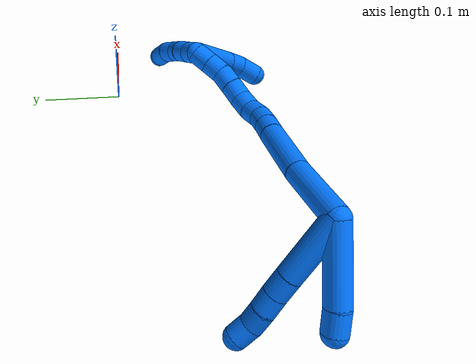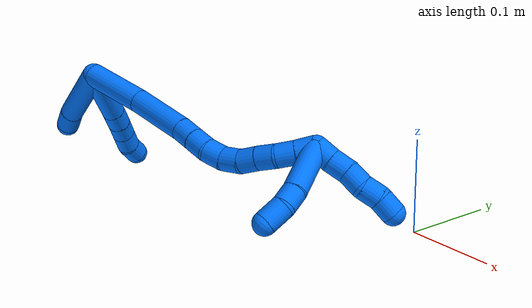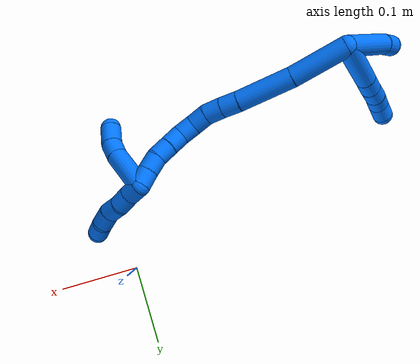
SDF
<sdf version="1.7">
 <world name="default">
  <model name="14">
   <static>0</static>
   <link name="14">
    <collision name="collision-cylinder-e_1_2_8">
     <pose>-0.025557 0.01854 -0.012204 -2.15297 -0.85566 1.40445</pose>
     <geometry><cylinder><radius>0.0125</radius><length>0.067701</length></cylinder></geometry>
     <surface>
      <friction><ode><mu>1.16</mu><mu2>1.16</mu2><slip1>0</slip1><slip2>0</slip2></ode></friction>
      <contact><ode><kp>1e+06</kp><kd>1</kd><max_vel>0</max_vel><min_depth>0.001</min_depth></ode></contact>
     </surface>
    </collision>
    <visual name="visual-cylinder-e_1_2_8">
     <pose>-0.025557 0.01854 -0.012204 -2.15297 -0.85566 1.40445</pose>
     <geometry><cylinder><radius>0.0125</radius><length>0.067701</length></cylinder></geometry>
     <material><ambient>0 0.462745 1 1</ambient></material>
    </visual>
    <collision name="collision-cylinder-e_2_8_9">
     <pose>-0.05945 0.042703 -0.02854 -2.20441 -0.873911 1.49044</pose>
     <geometry><cylinder><radius>0.0125</radius><length>0.021741</length></cylinder></geometry>
     <surface>
      <friction><ode><mu>1.16</mu><mu2>1.16</mu2><slip1>0</slip1><slip2>0</slip2></ode></friction>
      <contact><ode><kp>1e+06</kp><kd>1</kd><max_vel>0</max_vel><min_depth>0.001</min_depth></ode></contact>
     </surface>
    </collision>
    <visual name="visual-cylinder-e_2_8_9">
     <pose>-0.05945 0.042703 -0.02854 -2.20441 -0.873911 1.49044</pose>
     <geometry><cylinder><radius>0.0125</radius><length>0.021741</length></cylinder></geometry>
     <material><ambient>0 0.462745 1 1</ambient></material>
    </visual>
    <collision name="collision-cylinder-e_3_9_10">
     <pose>-0.075734 0.053463 -0.036203 -2.17322 -0.905601 1.49295</pose>
     <geometry><cylinder><radius>0.0125</radius><length>0.020203</length></cylinder></geometry>
     <surface>
      <friction><ode><mu>1.16</mu><mu2>1.16</mu2><slip1>0</slip1><slip2>0</slip2></ode></friction>
      <contact><ode><kp>1e+06</kp><kd>1</kd><max_vel>0</max_vel><min_depth>0.001</min_depth></ode></contact>
     </surface>
    </collision>
    <visual name="visual-cylinder-e_3_9_10">
     <pose>-0.075734 0.053463 -0.036203 -2.17322 -0.905601 1.49295</pose>
     <geometry><cylinder><radius>0.0125</radius><length>0.020203</length></cylinder></geometry>
     <material><ambient>0 0.462745 1 1</ambient></material>
    </visual>
    <collision name="collision-cylinder-e_4_10_11">
     <pose>-0.091551 0.063178 -0.044156 -2.33867 -0.890792 1.68791</pose>
     <geometry><cylinder><radius>0.0125</radius><length>0.020239</length></cylinder></geometry>
     <surface>
      <friction><ode><mu>1.16</mu><mu2>1.16</mu2><slip1>0</slip1><slip2>0</slip2></ode></friction>
      <contact><ode><kp>1e+06</kp><kd>1</kd><max_vel>0</max_vel><min_depth>0.001</min_depth></ode></contact>
     </surface>
    </collision>
    <visual name="visual-cylinder-e_4_10_11">
     <pose>-0.091551 0.063178 -0.044156 -2.33867 -0.890792 1.68791</pose>
     <geometry><cylinder><radius>0.0125</radius><length>0.020239</length></cylinder></geometry>
     <material><ambient>0 0.462745 1 1</ambient></material>
    </visual>
    <collision name="collision-cylinder-e_5_11_6">
     <pose>-0.105608 0.074569 -0.05263 -2.10746 -0.662759 1.08822</pose>
     <geometry><cylinder><radius>0.0125</radius><length>0.020116</length></cylinder></geometry>
     <surface>
      <friction><ode><mu>1.16</mu><mu2>1.16</mu2><slip1>0</slip1><slip2>0</slip2></ode></friction>
      <contact><ode><kp>1e+06</kp><kd>1</kd><max_vel>0</max_vel><min_depth>0.001</min_depth></ode></contact>
     </surface>
    </collision>
    <visual name="visual-cylinder-e_5_11_6">
     <pose>-0.105608 0.074569 -0.05263 -2.10746 -0.662759 1.08822</pose>
     <geometry><cylinder><radius>0.0125</radius><length>0.020116</length></cylinder></geometry>
     <material><ambient>0 0.462745 1 1</ambient></material>
    </visual>
    <collision name="collision-cylinder-e_1_2_12">
     <pose>-0.037434 0.007468 0.004735 -1.00575 -1.33885 0.82105</pose>
     <geometry><cylinder><radius>0.0125</radius><length>0.076929</length></cylinder></geometry>
     <surface>
      <friction><ode><mu>1.16</mu><mu2>1.16</mu2><slip1>0</slip1><slip2>0</slip2></ode></friction>
      <contact><ode><kp>1e+06</kp><kd>1</kd><max_vel>0</max_vel><min_depth>0.001</min_depth></ode></contact>
     </surface>
    </collision>
    <visual name="visual-cylinder-e_1_2_12">
     <pose>-0.037434 0.007468 0.004735 -1.00575 -1.33885 0.82105</pose>
     <geometry><cylinder><radius>0.0125</radius><length>0.076929</length></cylinder></geometry>
     <material><ambient>0 0.462745 1 1</ambient></material>
    </visual>
    <collision name="collision-cylinder-e_2_12_5">
     <pose>-0.086105 0.017541 0.009278 -1.64412 -1.34235 1.41438</pose>
     <geometry><cylinder><radius>0.0125</radius><length>0.023071</length></cylinder></geometry>
     <surface>
      <friction><ode><mu>1.16</mu><mu2>1.16</mu2><slip1>0</slip1><slip2>0</slip2></ode></friction>
      <contact><ode><kp>1e+06</kp><kd>1</kd><max_vel>0</max_vel><min_depth>0.001</min_depth></ode></contact>
     </surface>
    </collision>
    <visual name="visual-cylinder-e_2_12_5">
     <pose>-0.086105 0.017541 0.009278 -1.64412 -1.34235 1.41438</pose>
     <geometry><cylinder><radius>0.0125</radius><length>0.023071</length></cylinder></geometry>
     <material><ambient>0 0.462745 1 1</ambient></material>
    </visual>
    <collision name="collision-cylinder-e_1_2_13">
     <pose>0.012399 -0.004952 -0.032191 2.98897 0.363747 2.35358</pose>
     <geometry><cylinder><radius>0.0125</radius><length>0.0697</length></cylinder></geometry>
     <surface>
      <friction><ode><mu>1.16</mu><mu2>1.16</mu2><slip1>0</slip1><slip2>0</slip2></ode></friction>
      <contact><ode><kp>1e+06</kp><kd>1</kd><max_vel>0</max_vel><min_depth>0.001</min_depth></ode></contact>
     </surface>
    </collision>
    <visual name="visual-cylinder-e_1_2_13">
     <pose>0.012399 -0.004952 -0.032191 2.98897 0.363747 2.35358</pose>
     <geometry><cylinder><radius>0.0125</radius><length>0.0697</length></cylinder></geometry>
     <material><ambient>0 0.462745 1 1</ambient></material>
    </visual>
    <collision name="collision-cylinder-e_2_13_14">
     <pose>0.036749 -0.017654 -0.095256 2.89562 0.359181 1.94604</pose>
     <geometry><cylinder><radius>0.0125</radius><length>0.068001</length></cylinder></geometry>
     <surface>
      <friction><ode><mu>1.16</mu><mu2>1.16</mu2><slip1>0</slip1><slip2>0</slip2></ode></friction>
      <contact><ode><kp>1e+06</kp><kd>1</kd><max_vel>0</max_vel><min_depth>0.001</min_depth></ode></contact>
     </surface>
    </collision>
    <visual name="visual-cylinder-e_2_13_14">
     <pose>0.036749 -0.017654 -0.095256 2.89562 0.359181 1.94604</pose>
     <geometry><cylinder><radius>0.0125</radius><length>0.068001</length></cylinder></geometry>
     <material><ambient>0 0.462745 1 1</ambient></material>
    </visual>
    <collision name="collision-cylinder-e_3_14_15">
     <pose>0.051844 -0.02849 -0.135747 2.8312 0.301641 1.54174</pose>
     <geometry><cylinder><radius>0.0125</radius><length>0.021158</length></cylinder></geometry>
     <surface>
      <friction><ode><mu>1.16</mu><mu2>1.16</mu2><slip1>0</slip1><slip2>0</slip2></ode></friction>
      <contact><ode><kp>1e+06</kp><kd>1</kd><max_vel>0</max_vel><min_depth>0.001</min_depth></ode></contact>
     </surface>
    </collision>
    <visual name="visual-cylinder-e_3_14_15">
     <pose>0.051844 -0.02849 -0.135747 2.8312 0.301641 1.54174</pose>
     <geometry><cylinder><radius>0.0125</radius><length>0.021158</length></cylinder></geometry>
     <material><ambient>0 0.462745 1 1</ambient></material>
    </visual>
    <collision name="collision-cylinder-e_4_15_16">
     <pose>0.057857 -0.034204 -0.155089 2.87757 0.277641 1.62169</pose>
     <geometry><cylinder><radius>0.0125</radius><length>0.020946</length></cylinder></geometry>
     <surface>
      <friction><ode><mu>1.16</mu><mu2>1.16</mu2><slip1>0</slip1><slip2>0</slip2></ode></friction>
      <contact><ode><kp>1e+06</kp><kd>1</kd><max_vel>0</max_vel><min_depth>0.001</min_depth></ode></contact>
     </surface>
    </collision>
    <visual name="visual-cylinder-e_4_15_16">
     <pose>0.057857 -0.034204 -0.155089 2.87757 0.277641 1.62169</pose>
     <geometry><cylinder><radius>0.0125</radius><length>0.020946</length></cylinder></geometry>
     <material><ambient>0 0.462745 1 1</ambient></material>
    </visual>
    <collision name="collision-cylinder-e_5_16_17">
     <pose>0.063826 -0.036746 -0.174419 -3.13262 0.311992 -3.08458</pose>
     <geometry><cylinder><radius>0.0125</radius><length>0.020189</length></cylinder></geometry>
     <surface>
      <friction><ode><mu>1.16</mu><mu2>1.16</mu2><slip1>0</slip1><slip2>0</slip2></ode></friction>
      <contact><ode><kp>1e+06</kp><kd>1</kd><max_vel>0</max_vel><min_depth>0.001</min_depth></ode></contact>
     </surface>
    </collision>
    <visual name="visual-cylinder-e_5_16_17">
     <pose>0.063826 -0.036746 -0.174419 -3.13262 0.311992 -3.08458</pose>
     <geometry><cylinder><radius>0.0125</radius><length>0.020189</length></cylinder></geometry>
     <material><ambient>0 0.462745 1 1</ambient></material>
    </visual>
    <collision name="collision-cylinder-e_6_17_18">
     <pose>0.072736 -0.036245 -0.192154 -3.09056 0.62001 -2.98258</pose>
     <geometry><cylinder><radius>0.0125</radius><length>0.020001</length></cylinder></geometry>
     <surface>
      <friction><ode><mu>1.16</mu><mu2>1.16</mu2><slip1>0</slip1><slip2>0</slip2></ode></friction>
      <contact><ode><kp>1e+06</kp><kd>1</kd><max_vel>0</max_vel><min_depth>0.001</min_depth></ode></contact>
     </surface>
    </collision>
    <visual name="visual-cylinder-e_6_17_18">
     <pose>0.072736 -0.036245 -0.192154 -3.09056 0.62001 -2.98258</pose>
     <geometry><cylinder><radius>0.0125</radius><length>0.020001</length></cylinder></geometry>
     <material><ambient>0 0.462745 1 1</ambient></material>
    </visual>
    <collision name="collision-cylinder-e_7_18_19">
     <pose>0.086262 -0.034103 -0.206408 -2.86689 0.881132 -2.57123</pose>
     <geometry><cylinder><radius>0.0125</radius><length>0.020003</length></cylinder></geometry>
     <surface>
      <friction><ode><mu>1.16</mu><mu2>1.16</mu2><slip1>0</slip1><slip2>0</slip2></ode></friction>
      <contact><ode><kp>1e+06</kp><kd>1</kd><max_vel>0</max_vel><min_depth>0.001</min_depth></ode></contact>
     </surface>
    </collision>
    <visual name="visual-cylinder-e_7_18_19">
     <pose>0.086262 -0.034103 -0.206408 -2.86689 0.881132 -2.57123</pose>
     <geometry><cylinder><radius>0.0125</radius><length>0.020003</length></cylinder></geometry>
     <material><ambient>0 0.462745 1 1</ambient></material>
    </visual>
    <collision name="collision-cylinder-e_8_19_20">
     <pose>0.101356 -0.030746 -0.219084 -2.89757 0.829717 -2.59851</pose>
     <geometry><cylinder><radius>0.0125</radius><length>0.02</length></cylinder></geometry>
     <surface>
      <friction><ode><mu>1.16</mu><mu2>1.16</mu2><slip1>0</slip1><slip2>0</slip2></ode></friction>
      <contact><ode><kp>1e+06</kp><kd>1</kd><max_vel>0</max_vel><min_depth>0.001</min_depth></ode></contact>
     </surface>
    </collision>
    <visual name="visual-cylinder-e_8_19_20">
     <pose>0.101356 -0.030746 -0.219084 -2.89757 0.829717 -2.59851</pose>
     <geometry><cylinder><radius>0.0125</radius><length>0.02</length></cylinder></geometry>
     <material><ambient>0 0.462745 1 1</ambient></material>
    </visual>
    <collision name="collision-cylinder-e_9_20_21">
     <pose>0.115421 -0.025049 -0.231859 -2.56297 0.732603 -1.82179</pose>
     <geometry><cylinder><radius>0.0125</radius><length>0.02</length></cylinder></geometry>
     <surface>
      <friction><ode><mu>1.16</mu><mu2>1.16</mu2><slip1>0</slip1><slip2>0</slip2></ode></friction>
      <contact><ode><kp>1e+06</kp><kd>1</kd><max_vel>0</max_vel><min_depth>0.001</min_depth></ode></contact>
     </surface>
    </collision>
    <visual name="visual-cylinder-e_9_20_21">
     <pose>0.115421 -0.025049 -0.231859 -2.56297 0.732603 -1.82179</pose>
     <geometry><cylinder><radius>0.0125</radius><length>0.02</length></cylinder></geometry>
     <material><ambient>0 0.462745 1 1</ambient></material>
    </visual>
    <collision name="collision-cylinder-e_10_21_1">
     <pose>0.128992 -0.01639 -0.243698 -2.45586 0.759121 -1.68165</pose>
     <geometry><cylinder><radius>0.0125</radius><length>0.02</length></cylinder></geometry>
     <surface>
      <friction><ode><mu>1.16</mu><mu2>1.16</mu2><slip1>0</slip1><slip2>0</slip2></ode></friction>
      <contact><ode><kp>1e+06</kp><kd>1</kd><max_vel>0</max_vel><min_depth>0.001</min_depth></ode></contact>
     </surface>
    </collision>
    <visual name="visual-cylinder-e_10_21_1">
     <pose>0.128992 -0.01639 -0.243698 -2.45586 0.759121 -1.68165</pose>
     <geometry><cylinder><radius>0.0125</radius><length>0.02</length></cylinder></geometry>
     <material><ambient>0 0.462745 1 1</ambient></material>
    </visual>
    <collision name="collision-cylinder-e_1_1_22">
     <pose>0.125897 -0.036062 -0.258228 1.92288 -0.368337 -0.521625</pose>
     <geometry><cylinder><radius>0.0125</radius><length>0.055421</length></cylinder></geometry>
     <surface>
      <friction><ode><mu>1.16</mu><mu2>1.16</mu2><slip1>0</slip1><slip2>0</slip2></ode></friction>
      <contact><ode><kp>1e+06</kp><kd>1</kd><max_vel>0</max_vel><min_depth>0.001</min_depth></ode></contact>
     </surface>
    </collision>
    <visual name="visual-cylinder-e_1_1_22">
     <pose>0.125897 -0.036062 -0.258228 1.92288 -0.368337 -0.521625</pose>
     <geometry><cylinder><radius>0.0125</radius><length>0.055421</length></cylinder></geometry>
     <material><ambient>0 0.462745 1 1</ambient></material>
    </visual>
    <collision name="collision-cylinder-e_2_22_23">
     <pose>0.111573 -0.069198 -0.268813 1.75683 -0.448842 -0.53717</pose>
     <geometry><cylinder><radius>0.0125</radius><length>0.020036</length></cylinder></geometry>
     <surface>
      <friction><ode><mu>1.16</mu><mu2>1.16</mu2><slip1>0</slip1><slip2>0</slip2></ode></friction>
      <contact><ode><kp>1e+06</kp><kd>1</kd><max_vel>0</max_vel><min_depth>0.001</min_depth></ode></contact>
     </surface>
    </collision>
    <visual name="visual-cylinder-e_2_22_23">
     <pose>0.111573 -0.069198 -0.268813 1.75683 -0.448842 -0.53717</pose>
     <geometry><cylinder><radius>0.0125</radius><length>0.020036</length></cylinder></geometry>
     <material><ambient>0 0.462745 1 1</ambient></material>
    </visual>
    <collision name="collision-cylinder-e_3_23_4">
     <pose>0.099742 -0.08777 -0.269804 1.50098 -0.655918 -0.614473</pose>
     <geometry><cylinder><radius>0.0125</radius><length>0.024542</length></cylinder></geometry>
     <surface>
      <friction><ode><mu>1.16</mu><mu2>1.16</mu2><slip1>0</slip1><slip2>0</slip2></ode></friction>
      <contact><ode><kp>1e+06</kp><kd>1</kd><max_vel>0</max_vel><min_depth>0.001</min_depth></ode></contact>
     </surface>
    </collision>
    <visual name="visual-cylinder-e_3_23_4">
     <pose>0.099742 -0.08777 -0.269804 1.50098 -0.655918 -0.614473</pose>
     <geometry><cylinder><radius>0.0125</radius><length>0.024542</length></cylinder></geometry>
     <material><ambient>0 0.462745 1 1</ambient></material>
    </visual>
    <collision name="collision-cylinder-e_1_1_24">
     <pose>0.136234 -0.011792 -0.259306 -3.14116 0.035877 -3.11746</pose>
     <geometry><cylinder><radius>0.0125</radius><length>0.02</length></cylinder></geometry>
     <surface>
      <friction><ode><mu>1.16</mu><mu2>1.16</mu2><slip1>0</slip1><slip2>0</slip2></ode></friction>
      <contact><ode><kp>1e+06</kp><kd>1</kd><max_vel>0</max_vel><min_depth>0.001</min_depth></ode></contact>
     </surface>
    </collision>
    <visual name="visual-cylinder-e_1_1_24">
     <pose>0.136234 -0.011792 -0.259306 -3.14116 0.035877 -3.11746</pose>
     <geometry><cylinder><radius>0.0125</radius><length>0.02</length></cylinder></geometry>
     <material><ambient>0 0.462745 1 1</ambient></material>
    </visual>
    <collision name="collision-cylinder-e_2_24_25">
     <pose>0.137593 -0.01083 -0.279204 -3.04528 0.100218 -1.61056</pose>
     <geometry><cylinder><radius>0.0125</radius><length>0.02</length></cylinder></geometry>
     <surface>
      <friction><ode><mu>1.16</mu><mu2>1.16</mu2><slip1>0</slip1><slip2>0</slip2></ode></friction>
      <contact><ode><kp>1e+06</kp><kd>1</kd><max_vel>0</max_vel><min_depth>0.001</min_depth></ode></contact>
     </surface>
    </collision>
    <visual name="visual-cylinder-e_2_24_25">
     <pose>0.137593 -0.01083 -0.279204 -3.04528 0.100218 -1.61056</pose>
     <geometry><cylinder><radius>0.0125</radius><length>0.02</length></cylinder></geometry>
     <material><ambient>0 0.462745 1 1</ambient></material>
    </visual>
    <collision name="collision-cylinder-e_3_25_26">
     <pose>0.138352 -0.010754 -0.299066 3.05346 -0.024146 -0.534512</pose>
     <geometry><cylinder><radius>0.0125</radius><length>0.02</length></cylinder></geometry>
     <surface>
      <friction><ode><mu>1.16</mu><mu2>1.16</mu2><slip1>0</slip1><slip2>0</slip2></ode></friction>
      <contact><ode><kp>1e+06</kp><kd>1</kd><max_vel>0</max_vel><min_depth>0.001</min_depth></ode></contact>
     </surface>
    </collision>
    <visual name="visual-cylinder-e_3_25_26">
     <pose>0.138352 -0.010754 -0.299066 3.05346 -0.024146 -0.534512</pose>
     <geometry><cylinder><radius>0.0125</radius><length>0.02</length></cylinder></geometry>
     <material><ambient>0 0.462745 1 1</ambient></material>
    </visual>
    <collision name="collision-cylinder-e_4_26_27">
     <pose>0.138264 -0.009206 -0.318723 -2.89634 0.01537 -0.124554</pose>
     <geometry><cylinder><radius>0.0125</radius><length>0.02</length></cylinder></geometry>
     <surface>
      <friction><ode><mu>1.16</mu><mu2>1.16</mu2><slip1>0</slip1><slip2>0</slip2></ode></friction>
      <contact><ode><kp>1e+06</kp><kd>1</kd><max_vel>0</max_vel><min_depth>0.001</min_depth></ode></contact>
     </surface>
    </collision>
    <visual name="visual-cylinder-e_4_26_27">
     <pose>0.138264 -0.009206 -0.318723 -2.89634 0.01537 -0.124554</pose>
     <geometry><cylinder><radius>0.0125</radius><length>0.02</length></cylinder></geometry>
     <material><ambient>0 0.462745 1 1</ambient></material>
    </visual>
    <collision name="collision-cylinder-e_5_27_3">
     <pose>0.13568 -0.004918 -0.337859 -2.94696 -0.27732 1.92076</pose>
     <geometry><cylinder><radius>0.0125</radius><length>0.02</length></cylinder></geometry>
     <surface>
      <friction><ode><mu>1.16</mu><mu2>1.16</mu2><slip1>0</slip1><slip2>0</slip2></ode></friction>
      <contact><ode><kp>1e+06</kp><kd>1</kd><max_vel>0</max_vel><min_depth>0.001</min_depth></ode></contact>
     </surface>
    </collision>
    <visual name="visual-cylinder-e_5_27_3">
     <pose>0.13568 -0.004918 -0.337859 -2.94696 -0.27732 1.92076</pose>
     <geometry><cylinder><radius>0.0125</radius><length>0.02</length></cylinder></geometry>
     <material><ambient>0 0.462745 1 1</ambient></material>
    </visual>
    <collision name="collision-sphere-3">
     <pose>0.132942 -0.003058 -0.347296 0 -0 0</pose>
     <geometry><sphere><radius>0.0125</radius></sphere></geometry>
     <surface>
      <friction><ode><mu>1.16</mu><mu2>1.16</mu2><slip1>0</slip1><slip2>0</slip2></ode></friction>
      <contact><ode><kp>1e+06</kp><kd>1</kd><max_vel>0</max_vel><min_depth>0.001</min_depth></ode></contact>
     </surface>
    </collision>
    <visual name="visual-sphere-3">
     <pose>0.132942 -0.003058 -0.347296 0 -0 0</pose>
     <geometry><sphere><radius>0.0125</radius></sphere></geometry>
     <material><ambient>0 0.462745 1 1</ambient></material>
    </visual>
    <collision name="collision-sphere-27">
     <pose>0.138418 -0.006778 -0.328423 0 -0 0</pose>
     <geometry><sphere><radius>0.0125</radius></sphere></geometry>
     <surface>
      <friction><ode><mu>1.16</mu><mu2>1.16</mu2><slip1>0</slip1><slip2>0</slip2></ode></friction>
      <contact><ode><kp>1e+06</kp><kd>1</kd><max_vel>0</max_vel><min_depth>0.001</min_depth></ode></contact>
     </surface>
    </collision>
    <visual name="visual-sphere-27">
     <pose>0.138418 -0.006778 -0.328423 0 -0 0</pose>
     <geometry><sphere><radius>0.0125</radius></sphere></geometry>
     <material><ambient>0 0.462745 1 1</ambient></material>
    </visual>
    <collision name="collision-sphere-26">
     <pose>0.138111 -0.011633 -0.309024 0 -0 0</pose>
     <geometry><sphere><radius>0.0125</radius></sphere></geometry>
     <surface>
      <friction><ode><mu>1.16</mu><mu2>1.16</mu2><slip1>0</slip1><slip2>0</slip2></ode></friction>
      <contact><ode><kp>1e+06</kp><kd>1</kd><max_vel>0</max_vel><min_depth>0.001</min_depth></ode></contact>
     </surface>
    </collision>
    <visual name="visual-sphere-26">
     <pose>0.138111 -0.011633 -0.309024 0 -0 0</pose>
     <geometry><sphere><radius>0.0125</radius></sphere></geometry>
     <material><ambient>0 0.462745 1 1</ambient></material>
    </visual>
    <collision name="collision-sphere-25">
     <pose>0.138593 -0.009874 -0.289107 0 -0 0</pose>
     <geometry><sphere><radius>0.0125</radius></sphere></geometry>
     <surface>
      <friction><ode><mu>1.16</mu><mu2>1.16</mu2><slip1>0</slip1><slip2>0</slip2></ode></friction>
      <contact><ode><kp>1e+06</kp><kd>1</kd><max_vel>0</max_vel><min_depth>0.001</min_depth></ode></contact>
     </surface>
    </collision>
    <visual name="visual-sphere-25">
     <pose>0.138593 -0.009874 -0.289107 0 -0 0</pose>
     <geometry><sphere><radius>0.0125</radius></sphere></geometry>
     <material><ambient>0 0.462745 1 1</ambient></material>
    </visual>
    <collision name="collision-sphere-24">
     <pose>0.136592 -0.011787 -0.2693 0 -0 0</pose>
     <geometry><sphere><radius>0.0125</radius></sphere></geometry>
     <surface>
      <friction><ode><mu>1.16</mu><mu2>1.16</mu2><slip1>0</slip1><slip2>0</slip2></ode></friction>
      <contact><ode><kp>1e+06</kp><kd>1</kd><max_vel>0</max_vel><min_depth>0.001</min_depth></ode></contact>
     </surface>
    </collision>
    <visual name="visual-sphere-24">
     <pose>0.136592 -0.011787 -0.2693 0 -0 0</pose>
     <geometry><sphere><radius>0.0125</radius></sphere></geometry>
     <material><ambient>0 0.462745 1 1</ambient></material>
    </visual>
    <collision name="collision-sphere-4">
     <pose>0.092258 -0.097471 -0.269125 0 -0 0</pose>
     <geometry><sphere><radius>0.0125</radius></sphere></geometry>
     <surface>
      <friction><ode><mu>1.16</mu><mu2>1.16</mu2><slip1>0</slip1><slip2>0</slip2></ode></friction>
      <contact><ode><kp>1e+06</kp><kd>1</kd><max_vel>0</max_vel><min_depth>0.001</min_depth></ode></contact>
     </surface>
    </collision>
    <visual name="visual-sphere-4">
     <pose>0.092258 -0.097471 -0.269125 0 -0 0</pose>
     <geometry><sphere><radius>0.0125</radius></sphere></geometry>
     <material><ambient>0 0.462745 1 1</ambient></material>
    </visual>
    <collision name="collision-sphere-23">
     <pose>0.107226 -0.078069 -0.270482 0 -0 0</pose>
     <geometry><sphere><radius>0.0125</radius></sphere></geometry>
     <surface>
      <friction><ode><mu>1.16</mu><mu2>1.16</mu2><slip1>0</slip1><slip2>0</slip2></ode></friction>
      <contact><ode><kp>1e+06</kp><kd>1</kd><max_vel>0</max_vel><min_depth>0.001</min_depth></ode></contact>
     </surface>
    </collision>
    <visual name="visual-sphere-23">
     <pose>0.107226 -0.078069 -0.270482 0 -0 0</pose>
     <geometry><sphere><radius>0.0125</radius></sphere></geometry>
     <material><ambient>0 0.462745 1 1</ambient></material>
    </visual>
    <collision name="collision-sphere-22">
     <pose>0.11592 -0.060328 -0.267143 0 -0 0</pose>
     <geometry><sphere><radius>0.0125</radius></sphere></geometry>
     <surface>
      <friction><ode><mu>1.16</mu><mu2>1.16</mu2><slip1>0</slip1><slip2>0</slip2></ode></friction>
      <contact><ode><kp>1e+06</kp><kd>1</kd><max_vel>0</max_vel><min_depth>0.001</min_depth></ode></contact>
     </surface>
    </collision>
    <visual name="visual-sphere-22">
     <pose>0.11592 -0.060328 -0.267143 0 -0 0</pose>
     <geometry><sphere><radius>0.0125</radius></sphere></geometry>
     <material><ambient>0 0.462745 1 1</ambient></material>
    </visual>
    <collision name="collision-sphere-1">
     <pose>0.135875 -0.011796 -0.249313 0 -0 0</pose>
     <geometry><sphere><radius>0.0125</radius></sphere></geometry>
     <surface>
      <friction><ode><mu>1.16</mu><mu2>1.16</mu2><slip1>0</slip1><slip2>0</slip2></ode></friction>
      <contact><ode><kp>1e+06</kp><kd>1</kd><max_vel>0</max_vel><min_depth>0.001</min_depth></ode></contact>
     </surface>
    </collision>
    <visual name="visual-sphere-1">
     <pose>0.135875 -0.011796 -0.249313 0 -0 0</pose>
     <geometry><sphere><radius>0.0125</radius></sphere></geometry>
     <material><ambient>0 0.462745 1 1</ambient></material>
    </visual>
    <collision name="collision-sphere-21">
     <pose>0.122109 -0.020984 -0.238083 0 -0 0</pose>
     <geometry><sphere><radius>0.0125</radius></sphere></geometry>
     <surface>
      <friction><ode><mu>1.16</mu><mu2>1.16</mu2><slip1>0</slip1><slip2>0</slip2></ode></friction>
      <contact><ode><kp>1e+06</kp><kd>1</kd><max_vel>0</max_vel><min_depth>0.001</min_depth></ode></contact>
     </surface>
    </collision>
    <visual name="visual-sphere-21">
     <pose>0.122109 -0.020984 -0.238083 0 -0 0</pose>
     <geometry><sphere><radius>0.0125</radius></sphere></geometry>
     <material><ambient>0 0.462745 1 1</ambient></material>
    </visual>
    <collision name="collision-sphere-6">
     <pose>-0.111797 0.081383 -0.056684 0 -0 0</pose>
     <geometry><sphere><radius>0.0125</radius></sphere></geometry>
     <surface>
      <friction><ode><mu>1.16</mu><mu2>1.16</mu2><slip1>0</slip1><slip2>0</slip2></ode></friction>
      <contact><ode><kp>1e+06</kp><kd>1</kd><max_vel>0</max_vel><min_depth>0.001</min_depth></ode></contact>
     </surface>
    </collision>
    <visual name="visual-sphere-6">
     <pose>-0.111797 0.081383 -0.056684 0 -0 0</pose>
     <geometry><sphere><radius>0.0125</radius></sphere></geometry>
     <material><ambient>0 0.462745 1 1</ambient></material>
    </visual>
    <collision name="collision-sphere-11">
     <pose>-0.099419 0.067755 -0.048576 0 -0 0</pose>
     <geometry><sphere><radius>0.0125</radius></sphere></geometry>
     <surface>
      <friction><ode><mu>1.16</mu><mu2>1.16</mu2><slip1>0</slip1><slip2>0</slip2></ode></friction>
      <contact><ode><kp>1e+06</kp><kd>1</kd><max_vel>0</max_vel><min_depth>0.001</min_depth></ode></contact>
     </surface>
    </collision>
    <visual name="visual-sphere-11">
     <pose>-0.099419 0.067755 -0.048576 0 -0 0</pose>
     <geometry><sphere><radius>0.0125</radius></sphere></geometry>
     <material><ambient>0 0.462745 1 1</ambient></material>
    </visual>
    <collision name="collision-sphere-10">
     <pose>-0.083682 0.0586 -0.039736 0 -0 0</pose>
     <geometry><sphere><radius>0.0125</radius></sphere></geometry>
     <surface>
      <friction><ode><mu>1.16</mu><mu2>1.16</mu2><slip1>0</slip1><slip2>0</slip2></ode></friction>
      <contact><ode><kp>1e+06</kp><kd>1</kd><max_vel>0</max_vel><min_depth>0.001</min_depth></ode></contact>
     </surface>
    </collision>
    <visual name="visual-sphere-10">
     <pose>-0.083682 0.0586 -0.039736 0 -0 0</pose>
     <geometry><sphere><radius>0.0125</radius></sphere></geometry>
     <material><ambient>0 0.462745 1 1</ambient></material>
    </visual>
    <collision name="collision-sphere-9">
     <pose>-0.067786 0.048325 -0.03267 0 -0 0</pose>
     <geometry><sphere><radius>0.0125</radius></sphere></geometry>
     <surface>
      <friction><ode><mu>1.16</mu><mu2>1.16</mu2><slip1>0</slip1><slip2>0</slip2></ode></friction>
      <contact><ode><kp>1e+06</kp><kd>1</kd><max_vel>0</max_vel><min_depth>0.001</min_depth></ode></contact>
     </surface>
    </collision>
    <visual name="visual-sphere-9">
     <pose>-0.067786 0.048325 -0.03267 0 -0 0</pose>
     <geometry><sphere><radius>0.0125</radius></sphere></geometry>
     <material><ambient>0 0.462745 1 1</ambient></material>
    </visual>
    <collision name="collision-sphere-2">
     <geometry><sphere><radius>0.0125</radius></sphere></geometry>
     <surface>
      <friction><ode><mu>1.16</mu><mu2>1.16</mu2><slip1>0</slip1><slip2>0</slip2></ode></friction>
      <contact><ode><kp>1e+06</kp><kd>1</kd><max_vel>0</max_vel><min_depth>0.001</min_depth></ode></contact>
     </surface>
    </collision>
    <visual name="visual-sphere-2">
     <geometry><sphere><radius>0.0125</radius></sphere></geometry>
     <material><ambient>0 0.462745 1 1</ambient></material>
    </visual>
    <collision name="collision-sphere-19">
     <pose>0.093978 -0.032377 -0.212533 0 -0 0</pose>
     <geometry><sphere><radius>0.0125</radius></sphere></geometry>
     <surface>
      <friction><ode><mu>1.16</mu><mu2>1.16</mu2><slip1>0</slip1><slip2>0</slip2></ode></friction>
      <contact><ode><kp>1e+06</kp><kd>1</kd><max_vel>0</max_vel><min_depth>0.001</min_depth></ode></contact>
     </surface>
    </collision>
    <visual name="visual-sphere-19">
     <pose>0.093978 -0.032377 -0.212533 0 -0 0</pose>
     <geometry><sphere><radius>0.0125</radius></sphere></geometry>
     <material><ambient>0 0.462745 1 1</ambient></material>
    </visual>
    <collision name="collision-sphere-8">
     <pose>-0.051114 0.03708 -0.024409 0 -0 0</pose>
     <geometry><sphere><radius>0.0125</radius></sphere></geometry>
     <surface>
      <friction><ode><mu>1.16</mu><mu2>1.16</mu2><slip1>0</slip1><slip2>0</slip2></ode></friction>
      <contact><ode><kp>1e+06</kp><kd>1</kd><max_vel>0</max_vel><min_depth>0.001</min_depth></ode></contact>
     </surface>
    </collision>
    <visual name="visual-sphere-8">
     <pose>-0.051114 0.03708 -0.024409 0 -0 0</pose>
     <geometry><sphere><radius>0.0125</radius></sphere></geometry>
     <material><ambient>0 0.462745 1 1</ambient></material>
    </visual>
    <collision name="collision-sphere-12">
     <pose>-0.074869 0.014935 0.009469 0 -0 0</pose>
     <geometry><sphere><radius>0.0125</radius></sphere></geometry>
     <surface>
      <friction><ode><mu>1.16</mu><mu2>1.16</mu2><slip1>0</slip1><slip2>0</slip2></ode></friction>
      <contact><ode><kp>1e+06</kp><kd>1</kd><max_vel>0</max_vel><min_depth>0.001</min_depth></ode></contact>
     </surface>
    </collision>
    <visual name="visual-sphere-12">
     <pose>-0.074869 0.014935 0.009469 0 -0 0</pose>
     <geometry><sphere><radius>0.0125</radius></sphere></geometry>
     <material><ambient>0 0.462745 1 1</ambient></material>
    </visual>
    <collision name="collision-sphere-5">
     <pose>-0.09734 0.020146 0.009086 0 -0 0</pose>
     <geometry><sphere><radius>0.0125</radius></sphere></geometry>
     <surface>
      <friction><ode><mu>1.16</mu><mu2>1.16</mu2><slip1>0</slip1><slip2>0</slip2></ode></friction>
      <contact><ode><kp>1e+06</kp><kd>1</kd><max_vel>0</max_vel><min_depth>0.001</min_depth></ode></contact>
     </surface>
    </collision>
    <visual name="visual-sphere-5">
     <pose>-0.09734 0.020146 0.009086 0 -0 0</pose>
     <geometry><sphere><radius>0.0125</radius></sphere></geometry>
     <material><ambient>0 0.462745 1 1</ambient></material>
    </visual>
    <collision name="collision-sphere-13">
     <pose>0.024798 -0.009903 -0.064383 0 -0 0</pose>
     <geometry><sphere><radius>0.0125</radius></sphere></geometry>
     <surface>
      <friction><ode><mu>1.16</mu><mu2>1.16</mu2><slip1>0</slip1><slip2>0</slip2></ode></friction>
      <contact><ode><kp>1e+06</kp><kd>1</kd><max_vel>0</max_vel><min_depth>0.001</min_depth></ode></contact>
     </surface>
    </collision>
    <visual name="visual-sphere-13">
     <pose>0.024798 -0.009903 -0.064383 0 -0 0</pose>
     <geometry><sphere><radius>0.0125</radius></sphere></geometry>
     <material><ambient>0 0.462745 1 1</ambient></material>
    </visual>
    <collision name="collision-sphere-14">
     <pose>0.048701 -0.025405 -0.126129 0 -0 0</pose>
     <geometry><sphere><radius>0.0125</radius></sphere></geometry>
     <surface>
      <friction><ode><mu>1.16</mu><mu2>1.16</mu2><slip1>0</slip1><slip2>0</slip2></ode></friction>
      <contact><ode><kp>1e+06</kp><kd>1</kd><max_vel>0</max_vel><min_depth>0.001</min_depth></ode></contact>
     </surface>
    </collision>
    <visual name="visual-sphere-14">
     <pose>0.048701 -0.025405 -0.126129 0 -0 0</pose>
     <geometry><sphere><radius>0.0125</radius></sphere></geometry>
     <material><ambient>0 0.462745 1 1</ambient></material>
    </visual>
    <collision name="collision-sphere-15">
     <pose>0.054987 -0.031575 -0.145366 0 -0 0</pose>
     <geometry><sphere><radius>0.0125</radius></sphere></geometry>
     <surface>
      <friction><ode><mu>1.16</mu><mu2>1.16</mu2><slip1>0</slip1><slip2>0</slip2></ode></friction>
      <contact><ode><kp>1e+06</kp><kd>1</kd><max_vel>0</max_vel><min_depth>0.001</min_depth></ode></contact>
     </surface>
    </collision>
    <visual name="visual-sphere-15">
     <pose>0.054987 -0.031575 -0.145366 0 -0 0</pose>
     <geometry><sphere><radius>0.0125</radius></sphere></geometry>
     <material><ambient>0 0.462745 1 1</ambient></material>
    </visual>
    <collision name="collision-sphere-16">
     <pose>0.060728 -0.036832 -0.164812 0 -0 0</pose>
     <geometry><sphere><radius>0.0125</radius></sphere></geometry>
     <surface>
      <friction><ode><mu>1.16</mu><mu2>1.16</mu2><slip1>0</slip1><slip2>0</slip2></ode></friction>
      <contact><ode><kp>1e+06</kp><kd>1</kd><max_vel>0</max_vel><min_depth>0.001</min_depth></ode></contact>
     </surface>
    </collision>
    <visual name="visual-sphere-16">
     <pose>0.060728 -0.036832 -0.164812 0 -0 0</pose>
     <geometry><sphere><radius>0.0125</radius></sphere></geometry>
     <material><ambient>0 0.462745 1 1</ambient></material>
    </visual>
    <collision name="collision-sphere-17">
     <pose>0.066925 -0.03666 -0.184026 0 -0 0</pose>
     <geometry><sphere><radius>0.0125</radius></sphere></geometry>
     <surface>
      <friction><ode><mu>1.16</mu><mu2>1.16</mu2><slip1>0</slip1><slip2>0</slip2></ode></friction>
      <contact><ode><kp>1e+06</kp><kd>1</kd><max_vel>0</max_vel><min_depth>0.001</min_depth></ode></contact>
     </surface>
    </collision>
    <visual name="visual-sphere-17">
     <pose>0.066925 -0.03666 -0.184026 0 -0 0</pose>
     <geometry><sphere><radius>0.0125</radius></sphere></geometry>
     <material><ambient>0 0.462745 1 1</ambient></material>
    </visual>
    <collision name="collision-sphere-18">
     <pose>0.078547 -0.03583 -0.200283 0 -0 0</pose>
     <geometry><sphere><radius>0.0125</radius></sphere></geometry>
     <surface>
      <friction><ode><mu>1.16</mu><mu2>1.16</mu2><slip1>0</slip1><slip2>0</slip2></ode></friction>
      <contact><ode><kp>1e+06</kp><kd>1</kd><max_vel>0</max_vel><min_depth>0.001</min_depth></ode></contact>
     </surface>
    </collision>
    <visual name="visual-sphere-18">
     <pose>0.078547 -0.03583 -0.200283 0 -0 0</pose>
     <geometry><sphere><radius>0.0125</radius></sphere></geometry>
     <material><ambient>0 0.462745 1 1</ambient></material>
    </visual>
    <collision name="collision-sphere-20">
     <pose>0.108733 -0.029115 -0.225635 0 -0 0</pose>
     <geometry><sphere><radius>0.0125</radius></sphere></geometry>
     <surface>
      <friction><ode><mu>1.16</mu><mu2>1.16</mu2><slip1>0</slip1><slip2>0</slip2></ode></friction>
      <contact><ode><kp>1e+06</kp><kd>1</kd><max_vel>0</max_vel><min_depth>0.001</min_depth></ode></contact>
     </surface>
    </collision>
    <visual name="visual-sphere-20">
     <pose>0.108733 -0.029115 -0.225635 0 -0 0</pose>
     <geometry><sphere><radius>0.0125</radius></sphere></geometry>
     <material><ambient>0 0.462745 1 1</ambient></material>
    </visual>
    <inertial>
     <pose>0.038724 -0.0079 -0.13331 0 -0 0</pose>
     <mass>0.75</mass>
     <inertia><ixx>4.7e-05</ixx><ixy>0</ixy><ixz>0</ixz><iyy>0.000166</iyy><iyz>0</iyz><izz>1.5e-05</izz></inertia>
    </inertial>
   </link>
   <pose>-0.312428 -0.181164 0.129471 0.124203 -0.971074 0.237198</pose>
  </model>
 </world>
</sdf>
